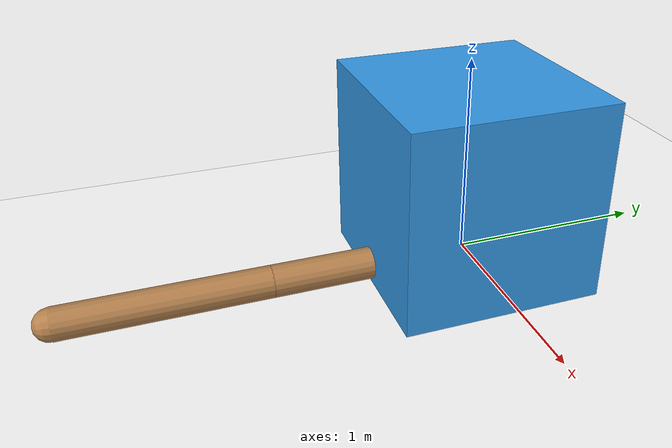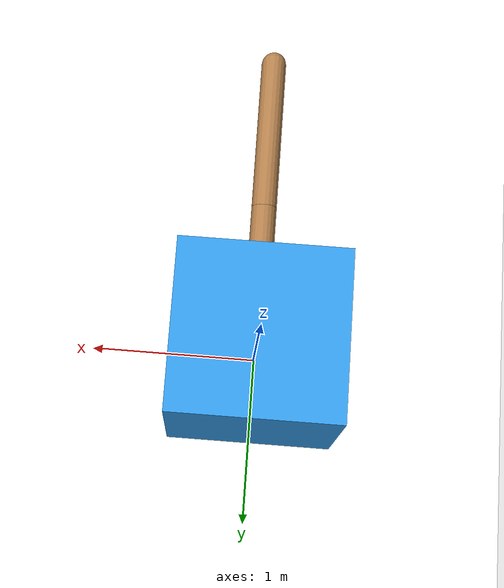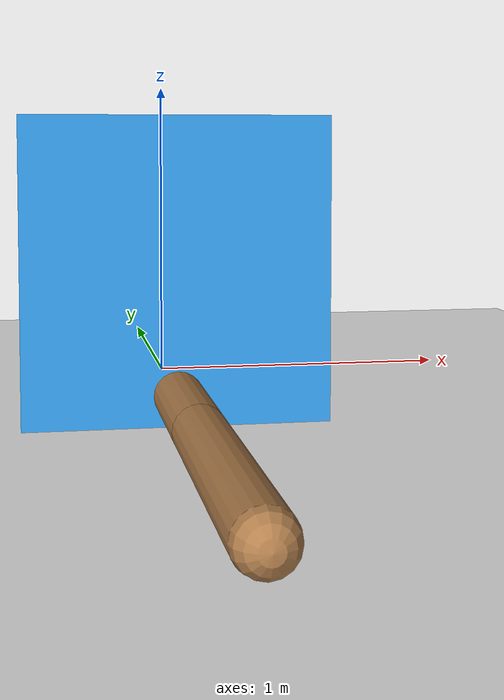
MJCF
<mujoco model="swimmer">
  <asset>
    <texture name="skybox" type="skybox" builtin="gradient" rgb1=".2 .3 .4" rgb2="0 0 0" width="800" height="800" mark="random" markrgb="1 1 1"/>
    <texture name="grid" type="2d" builtin="checker" rgb1=".1 .2 .2" rgb2=".2 .3 .3" width="300" height="300" mark="edge" markrgb=".2 .3 .3"/>
    <material name="grid" texture="grid" texrepeat="1 1" texuniform="true" reflectance=".2"/>
    <material name="self" rgba=".7 .5 .3 1"/>
  </asset>
  <visual>
    <headlight ambient=".4 .4 .4" diffuse=".8 .8 .8" specular="0.1 0.1 0.1"/>
    <map znear=".001"/>
    <quality shadowsize="16384"/>
  </visual>
  <compiler angle="degree" coordinate="global" inertiafromgeom="true"/>
  <option density="4000" integrator="RK4" timestep="0.01" viscosity="0.1"/>
  <default>
    <geom contype="1" conaffinity="1" condim="3" margin="0.001" rgba=".7 .5 .3 1"/>
    <joint armature="0.1"/>
  </default>
  <worldbody>
    <light cutoff="100" diffuse="1 1 1" dir="0 -0.3 -1.3" directional="true" exponent="1" pos="0 30 130" specular=".1 .1 .1"/>
    <geom condim="1" contype="0" conaffinity="0" name="floor" pos="0 0 -0.1" rgba="1 1 1 1" size="40 40 0.1" type="plane" material="grid"/>
    <body name="0" pos="0 0 0">
      <camera name="track" mode="trackcom" pos="0 -7 7" xyaxes="1 0 0 0 1 1"/>
      <joint axis="1 0 0" name="slider1" pos="0 0 0" type="slide"/>
      <joint axis="0 1 0" name="slider2" pos="0 0 0" type="slide"/>
      <joint axis="0 0 1" name="0_joint" pos="0 0 0" type="hinge"/>
      <geom density="1000" fromto="0 0 0 0 -1 0" size="0.08" type="capsule"/>
      <body name="1" pos="0 -1 0">
        <joint axis="0 0 1" limited="true" name="1_joint" pos="0 -1 0" range="-100 100" type="hinge"/>
        <geom density="1000" fromto="0 -1 0 0 -2 0" size="0.08" type="capsule"/>
      </body>
    </body>
    <body name="box" pos="0 0 0">
      <joint name="boxx" type="slide" axis="1 0 0" limited="false"/>
      <joint name="boxy" type="slide" axis="0 1 0" limited="false"/>
      <joint name="box_yaw" type="hinge" axis="0 0 1" limited="false"/>
      <geom type="box" size=".5 .5 .5" fromto="0 0 -.1 0 0 .9" density="10" rgba="0.2 0.6 0.9 1.0"/>
    </body>
  </worldbody>
  <actuator>
    <motor ctrllimited="true" ctrlrange="-1 1" gear="150" joint="1_joint" name="1_joint"/>
  </actuator>
</mujoco>
